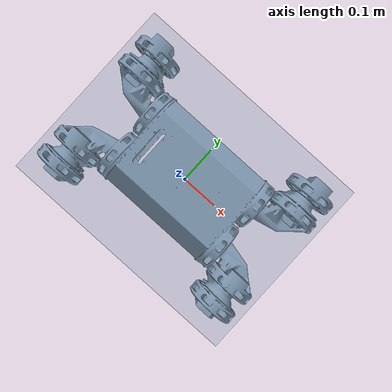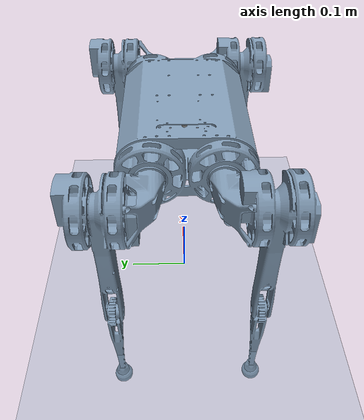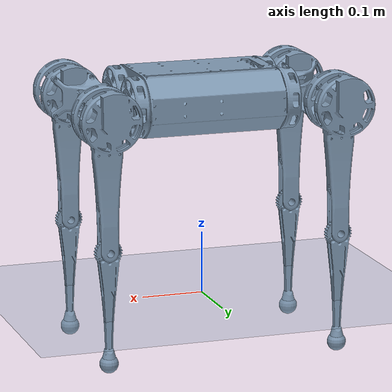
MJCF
<mujoco model="mini_cheetah">
    <compiler angle="radian" meshdir="../meshes/" />
    <size njmax="500" nconmax="100" />
    <option gravity='0 0 -9.81' iterations='50' solver='Newton' timestep='0.002'/>s

    <default>
        <geom contype="1" conaffinity="1" friction="0.6 0.3 0.3" rgba="0.5 0.6 0.7 1" margin="0.001" group="0"/>

        <light castshadow="false" diffuse="1 1 1"/>
        <motor ctrlrange="-33.5 33.5" ctrllimited="true"/>
        <camera fovy="60"/>
        <joint damping="0.01" armature="0.01" frictionloss="0.2" />

    </default>

    <asset>
        <mesh name="mini_body" file="mini_body.stl" />
        <mesh name="mini_abad" file="mini_abad.stl" />
        <mesh name="mini_upper_link" file="mini_upper_link.stl" />
        <mesh name="mini_lower_link" file="mini_lower_link.stl" />
    </asset>

    <asset>
        <texture name="plane" type="2d" builtin="flat" rgb1="1 1 1" rgb2="1 1 1" width="512" height="512" mark="cross" markrgb="0 0 0"/>
        <material name="plane" reflectance="0.0" texture="plane" texrepeat="3 3" texuniform="true"/>
        <texture name="grid" type="2d" builtin="checker" width="512" height="512" rgb1=".1 .2 .3" rgb2=".2 .3 .4"/>
        <material name="grid" texture="grid" texrepeat="2 2" texuniform="false" reflectance=".2"/>
    </asset>

    <visual>
        <headlight diffuse="0.6 0.6 0.6" ambient="0.3 0.3 0.3" specular="0 0 0"/>
        <rgba com="0.502 1.0 0 0.5" contactforce="0.98 0.4 0.4 0.7" contactpoint="1.0 1.0 0.6 0.4"/>
        <scale com="0.2" forcewidth="0.035" contactwidth="0.10" contactheight="0.04"/>
    </visual>

    <worldbody>
        <light pos="0 0 1.5" dir="0 0 -1" directional="true"/>
        <camera name="track" mode="trackcom" pos="0 -1.3 1.6" xyaxes="1 0 0 0 0.707 0.707"/>
        <geom name="floor" type="plane" size="0 0 1" material="grid"/>

        <body name="trunk" pos="0 0 0.32">
            <inertial pos="0 0 0" quat="0 0.707107 0 0.707107" mass="3.3" diaginertia="0.042673 0.036203 0.011253" />
            <joint type="free" />
            <geom type="mesh" contype="0" conaffinity="0" group="1" mesh="mini_body" />
            <geom type="mesh" mesh="mini_body" />
            <site name="imu" pos="0 0 0"/>

            <body name="1_FR_hip" pos="0.19 -0.049 0">
                <inertial pos="0 0.036 0" quat="0.564242 0.568689 0.421431 0.424993" mass="0.54" diaginertia="0.000577158 0.000443992 0.00036385" />
                <joint name="1_FR_hip_joint" pos="0 0 0" axis="1 0 0" />
                <geom pos="-0.055 0 0" quat="2.31078e-07 0.707105 0.707108 2.31079e-07" type="mesh" contype="0" conaffinity="0" group="1" mesh="mini_abad" />
                <geom pos="-0.055 0 0" quat="2.31078e-07 0.707105 0.707108 2.31079e-07" type="mesh" mesh="mini_abad" />
                <body name="1_FR_thigh" pos="0 -0.062 0">
                    <inertial pos="0 0.016 -0.02" quat="0.899267 -0.00195739 -0.00366412 0.437381" mass="0.634" diaginertia="0.001498 0.001498 0.001498" />
                    <joint name="1_FR_thigh_joint" pos="0 0 0" axis="0 1 0" />
                    <geom quat="0.707105 0 -0.707108 0" type="mesh" contype="0" conaffinity="0" group="1" mesh="mini_upper_link" />
                    <geom quat="0.707105 0 -0.707108 0" type="mesh" mesh="mini_upper_link" />
                    <body name="1_FR_calf" pos="0 0 -0.209">
                        <inertial pos="0 0 -0.188673" quat="0.707107 0 0 0.707107" mass="0.214" diaginertia="0.000310727 0.000307727 3.1e-05" />
                        <joint name="1_FR_calf_joint" pos="0 0 0" axis="0 1 0" />
                        <geom quat="3.26795e-07 0 1 0" type="mesh" contype="0" conaffinity="0" group="1" mesh="mini_lower_link" />
                        <geom quat="3.26795e-07 0 1 0" type="mesh" mesh="mini_lower_link" />

                        <geom name="FR_foot" size="0.015" pos="0 0 -0.18" friction="0.7 0.02 0.01"/>
                        <body name="1_FR_foot" pos="0 0 -0.18"/>
                        <site name="FR_foot_site" pos="0 0 -0.18" type="sphere" size="0.015"/>
                    </body>
                </body>
            </body>
            <body name="2_FL_hip" pos="0.19 0.049 0">
                <inertial pos="0 0.036 0" quat="0.564242 0.568689 0.421431 0.424993" mass="0.54" diaginertia="0.000577158 0.000443992 0.00036385" />
                <joint name="2_FL_hip_joint" pos="0 0 0" axis="1 0 0" />
                <geom pos="-0.055 0 0" quat="0.707105 0 0 -0.707108" type="mesh" contype="0" conaffinity="0" group="1" mesh="mini_abad" />
                <geom pos="-0.055 0 0" quat="0.707105 0 0 -0.707108" type="mesh" mesh="mini_abad" />
                <body name="2_FL_thigh" pos="0 0.062 0">
                    <inertial pos="0 0.016 -0.02" quat="0.899267 -0.00195739 -0.00366412 0.437381" mass="0.634" diaginertia="0.001498 0.001498 0.001498" />
                    <joint name="2_FL_thigh_joint" pos="0 0 0" axis="0 1 0" />
                    <geom quat="0.707105 0 -0.707108 0" type="mesh" contype="0" conaffinity="0" group="1" mesh="mini_upper_link" />
                    <geom quat="0.707105 0 -0.707108 0" type="mesh" mesh="mini_upper_link" />
                    <body name="2_FL_calf" pos="0 0 -0.209">
                        <inertial pos="0 0 -0.188673" quat="0.707107 0 0 0.707107" mass="0.214" diaginertia="0.000310727 0.000307727 3.1e-05" />
                        <joint name="2_FL_calf_joint" pos="0 0 0" axis="0 1 0" />
                        <geom quat="3.26795e-07 0 1 0" type="mesh" contype="0" conaffinity="0" group="1" mesh="mini_lower_link" />
                        <geom quat="3.26795e-07 0 1 0" type="mesh" mesh="mini_lower_link" />

                        <geom name="FL_foot" size="0.015" pos="0 0 -0.18" friction="0.7 0.02 0.01"/>
                        <body name="2_FL_foot" pos="0 0 -0.18"/>
                        <site name="FL_foot_site" pos="0 0 -0.18" type="sphere" size="0.015"/>
                    </body>
                </body>
            </body>
            <body name="3_RR_hip" pos="-0.19 -0.049 0">
                <inertial pos="0 0.036 0" quat="0.564242 0.568689 0.421431 0.424993" mass="0.54" diaginertia="0.000577158 0.000443992 0.00036385" />
                <joint name="3_RR_hip_joint" pos="0 0 0" axis="1 0 0" />
                <geom pos="0.055 0 0" quat="0.707105 0 0 0.707108" type="mesh" contype="0" conaffinity="0" group="1" mesh="mini_abad" />
                <geom pos="0.055 0 0" quat="0.707105 0 0 0.707108" type="mesh" mesh="mini_abad" />
                <body name="3_RR_thigh" pos="0 -0.062 0">
                    <inertial pos="0 0.016 -0.02" quat="0.899267 -0.00195739 -0.00366412 0.437381" mass="0.634" diaginertia="0.001498 0.001498 0.001498" />
                    <joint name="3_RR_thigh_joint" pos="0 0 0" axis="0 1 0" />
                    <geom quat="0.707105 0 -0.707108 0" type="mesh" contype="0" conaffinity="0" group="1" mesh="mini_upper_link" />
                    <geom quat="0.707105 0 -0.707108 0" type="mesh" mesh="mini_upper_link" />
                    <body name="3_RR_calf" pos="0 0 -0.209">
                        <inertial pos="0 0 -0.188673" quat="0.707107 0 0 0.707107" mass="0.214" diaginertia="0.000310727 0.000307727 3.1e-05" />
                        <joint name="3_RR_calf_joint" pos="0 0 0" axis="0 1 0" />
                        <geom quat="3.26795e-07 0 1 0" type="mesh" contype="0" conaffinity="0" group="1" mesh="mini_lower_link" />
                        <geom quat="3.26795e-07 0 1 0" type="mesh" mesh="mini_lower_link" />

                        <geom name="RR_foot" size="0.015" pos="0 0 -0.18" friction="0.7 0.02 0.01"/>
                        <body name="3_RR_foot" pos="0 0 -0.18"/>
                        <site name="RR_foot_site" pos="0 0 -0.18" type="sphere" size="0.015"/>
                    </body>
                </body>
            </body>
            <body name="4_RL_hip" pos="-0.19 0.049 0">
                <inertial pos="0 0.036 0" quat="0.564242 0.568689 0.421431 0.424993" mass="0.54" diaginertia="0.000577158 0.000443992 0.00036385" />
                <joint name="4_RL_hip_joint" pos="0 0 0" axis="1 0 0" />
                <geom pos="0.055 0 0" quat="2.31078e-07 0.707105 -0.707108 -2.31079e-07" type="mesh" contype="0" conaffinity="0" group="1" mesh="mini_abad" />
                <geom pos="0.055 0 0" quat="2.31078e-07 0.707105 -0.707108 -2.31079e-07" type="mesh" mesh="mini_abad" />
                <body name="4_RL_thigh" pos="0 0.062 0">
                    <inertial pos="0 0.016 -0.02" quat="0.899267 -0.00195739 -0.00366412 0.437381" mass="0.634" diaginertia="0.001498 0.001498 0.001498" />
                    <joint name="4_RL_thigh_joint" pos="0 0 0" axis="0 1 0" />
                    <geom quat="0.707105 0 -0.707108 0" type="mesh" contype="0" conaffinity="0" group="1" mesh="mini_upper_link" />
                    <geom quat="0.707105 0 -0.707108 0" type="mesh" mesh="mini_upper_link" />
                    <body name="4_RL_calf" pos="0 0 -0.209">
                        <inertial pos="0 0 -0.188673" quat="0.707107 0 0 0.707107" mass="0.214" diaginertia="0.000310727 0.000307727 3.1e-05" />
                        <joint name="4_RL_calf_joint" pos="0 0 0" axis="0 1 0" />
                        <geom quat="3.26795e-07 0 1 0" type="mesh" contype="0" conaffinity="0" group="1" mesh="mini_lower_link" />
                        <geom quat="3.26795e-07 0 1 0" type="mesh" mesh="mini_lower_link" />

                        <geom name="RL_foot" size="0.015" pos="0 0 -0.18" friction="0.7 0.02 0.01"/>
                        <body name="4_RL_foot" pos="0 0 -0.18"/>
                        <site name="RL_foot_site" pos="0 0 -0.18" type="sphere" size="0.015"/>
                    </body>
                </body>
            </body>
        </body>
    </worldbody>

    <actuator>
        <motor name="FR_hip"   gear="1" joint="1_FR_hip_joint"/>
        <motor name="FR_thigh"  gear="1" joint="1_FR_thigh_joint"/>
        <motor name="FR_calf"   gear="1" joint="1_FR_calf_joint"/>

        <motor name="FL_hip"   gear="1" joint="2_FL_hip_joint"/>
        <motor name="FL_thigh"  gear="1" joint="2_FL_thigh_joint"/>
        <motor name="FL_calf"   gear="1" joint="2_FL_calf_joint"/>

        <motor name="RR_hip"   gear="1" joint="3_RR_hip_joint"/>
        <motor name="RR_thigh"  gear="1" joint="3_RR_thigh_joint"/>
        <motor name="RR_calf"   gear="1" joint="3_RR_calf_joint"/>

        <motor name="RL_hip"   gear="1" joint="4_RL_hip_joint"/>
        <motor name="RL_thigh"  gear="1" joint="4_RL_thigh_joint"/>
        <motor name="RL_calf"   gear="1" joint="4_RL_calf_joint" />
    </actuator>

    <sensor>
        <accelerometer name="BodyAcc" site="imu"/>
        <gyro name="BodyGyro" site="imu"/>
        <frameangacc name="BodyAngAcc" objtype="site" objname="imu"/>

        <framepos name="BodyPos" objtype="site" objname="imu"/>
        <framequat name="BodyQuat" objtype="site" objname="imu"/>

        <framelinvel name="BodyVel" objtype="site" objname="imu" />

        <touch name="FR_foot_force_sensor" site="FR_foot_site"/>
        <touch name="FL_foot_force_sensor" site="FL_foot_site"/>
        <touch name="RR_foot_force_sensor" site="RR_foot_site"/>
        <touch name="RL_foot_force_sensor" site="RL_foot_site"/>
    </sensor>

    <contact>
        <exclude name="exclude_body_to_abad_fr" body1="trunk" body2="1_FR_thigh"/>
        <exclude name="exclude_body_to_abad_fl" body1="trunk" body2="2_FL_thigh"/>
        <exclude name="exclude_body_to_abad_hr" body1="trunk" body2="3_RR_thigh"/>
        <exclude name="exclude_body_to_abad_hl" body1="trunk" body2="4_RL_thigh"/>

        <exclude name="exclude_body_to_shank_fr" body1="trunk" body2="1_FR_hip"/>
        <exclude name="exclude_body_to_shank_fl" body1="trunk" body2="2_FL_hip"/>
        <exclude name="exclude_body_to_shank_hr" body1="trunk" body2="3_RR_hip"/>
        <exclude name="exclude_body_to_shank_hl" body1="trunk" body2="4_RL_hip"/>
    </contact>
</mujoco>
